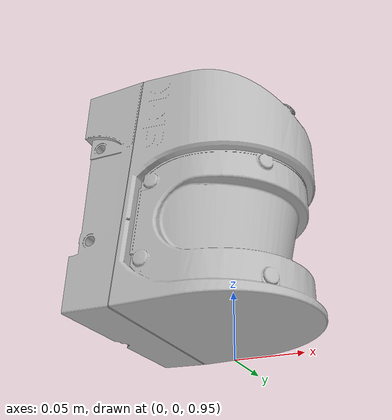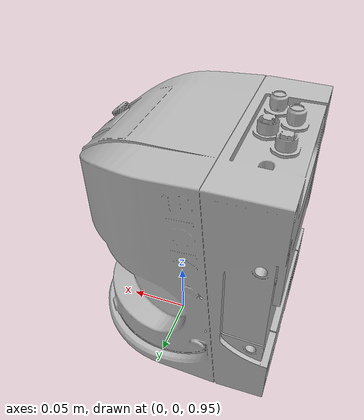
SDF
<?xml version="1.0"?>
<sdf version="1.4">
  <model name="SICK">
    <pose>0 0 1 0 0 0 </pose>
    <link name="link">
      <gravity>0</gravity>
      <visual name='visual'>
	<pose>0 0 0 1.57 0 -1.57 </pose>
	<geometry>
	  <mesh>
	    <uri>model://sick/meshes/LMS.STL </uri>
	  </mesh>
	</geometry>
      </visual>
      <sensor name='laser' type='ray'>
	<pose>0.01 0.04 0.0051 0 0 0</pose>
	<ray>
	  <scan>
	    <horizontal>
	      <samples>300</samples>
	      <resolution>1</resolution>
	      <min_angle>-1.658</min_angle>
	      <max_angle>1.658</max_angle>
	    </horizontal>
	  </scan>
	  <range>
	    <min>0.1</min>
	    <max>65</max>
	    <resolution>1</resolution>
	  </range>
	</ray>
	<always_on>1</always_on>
	<update_rate>30</update_rate>
	<visualize>1</visualize>
      </sensor>
    </link>
    <plugin name="SICK" filename="libsick.so"/>
  </model>
</sdf>
